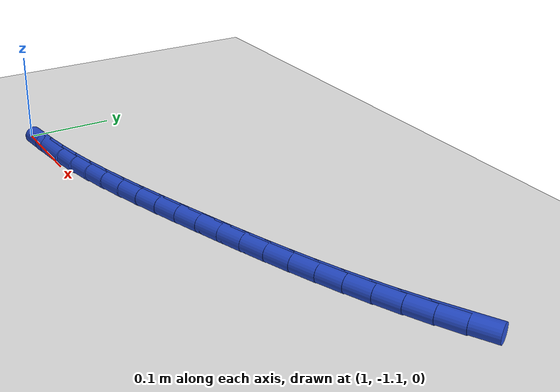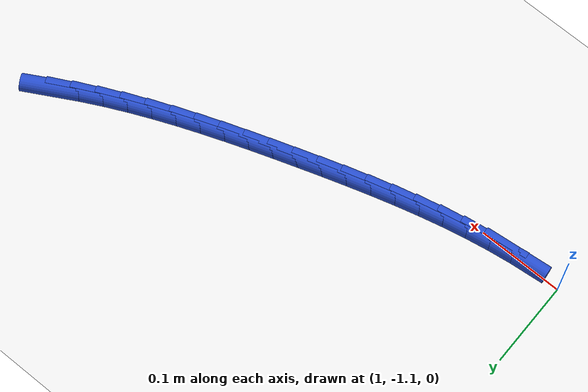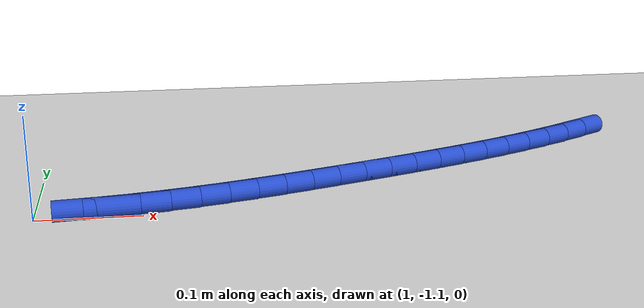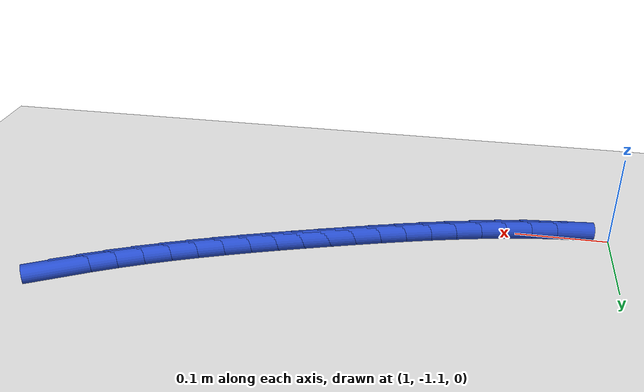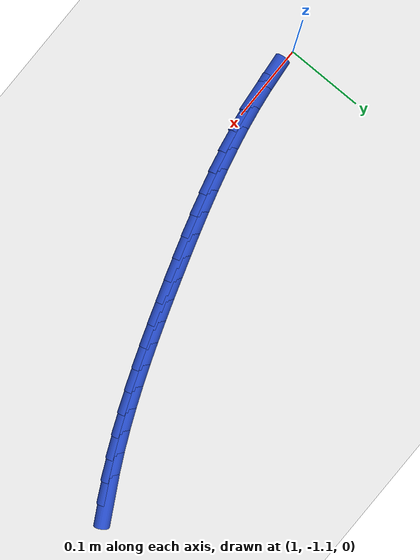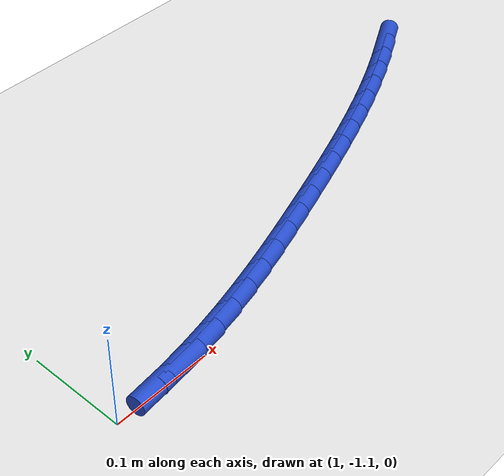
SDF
<sdf version="1.6">
 <world name="default">
  <model name="ground_plane">
   <static>1</static>
   <link name="link">
    <collision name="collision">
     <geometry><plane><normal>0 0 1</normal><size>100 100</size></plane></geometry>
     <surface><friction><ode><mu>100</mu><mu2>50</mu2></ode></friction></surface>
    </collision>
    <visual name="visual">
     <cast_shadows>0</cast_shadows>
     <geometry><plane><normal>0 0 1</normal><size>100 100</size></plane></geometry>
     <material>
      <script><uri>file://media/materials/scripts/gazebo.material</uri><name>Gazebo/WhiteGlow</name></script>
     </material>
    </visual>
   </link>
  </model>
  <model name="line">
   <link name="link_161">
    <pose>1.5607537051192655 -0.9312303788781396 0.01 0 1.57 0.5021988871085666</pose>
    <collision name="collision">
     <geometry><cylinder><radius>0.01</radius><length>0.08</length></cylinder></geometry>
    </collision>
    <visual name="visual">
     <material>
      <script><name>Gazebo/Blue</name><uri>file://media/materials/scripts/gazebo.material</uri></script>
     </material>
     <geometry><cylinder><radius>0.01</radius><length>0.08</length></cylinder></geometry>
    </visual>
   </link>
   <link name="link_162">
    <pose>1.5366263520600705 -0.944480181789634 0.01 0 1.57 0.46912707344735205</pose>
    <collision name="collision">
     <geometry><cylinder><radius>0.01</radius><length>0.08</length></cylinder></geometry>
    </collision>
    <visual name="visual">
     <material>
      <script><name>Gazebo/Blue</name><uri>file://media/materials/scripts/gazebo.material</uri></script>
     </material>
     <geometry><cylinder><radius>0.01</radius><length>0.08</length></cylinder></geometry>
    </visual>
   </link>
   <link name="link_163">
    <pose>1.5119670785547785 -0.95697918376825 0.01 0 1.57 0.43938711156961224</pose>
    <collision name="collision">
     <geometry><cylinder><radius>0.01</radius><length>0.08</length></cylinder></geometry>
    </collision>
    <visual name="visual">
     <material>
      <script><name>Gazebo/Blue</name><uri>file://media/materials/scripts/gazebo.material</uri></script>
     </material>
     <geometry><cylinder><radius>0.01</radius><length>0.08</length></cylinder></geometry>
    </visual>
   </link>
   <link name="link_164">
    <pose>1.4868313854411062 -0.9687937643168526 0.01 0 1.57 0.4129200745432514</pose>
    <collision name="collision">
     <geometry><cylinder><radius>0.01</radius><length>0.08</length></cylinder></geometry>
    </collision>
    <visual name="visual">
     <material>
      <script><name>Gazebo/Blue</name><uri>file://media/materials/scripts/gazebo.material</uri></script>
     </material>
     <geometry><cylinder><radius>0.01</radius><length>0.08</length></cylinder></geometry>
    </visual>
   </link>
   <link name="link_165">
    <pose>1.4612747735570755 -0.9799903029385311 0.01 0 1.57 0.3896533867964054</pose>
    <collision name="collision">
     <geometry><cylinder><radius>0.01</radius><length>0.08</length></cylinder></geometry>
    </collision>
    <visual name="visual">
     <material>
      <script><name>Gazebo/Blue</name><uri>file://media/materials/scripts/gazebo.material</uri></script>
     </material>
     <geometry><cylinder><radius>0.01</radius><length>0.08</length></cylinder></geometry>
    </visual>
   </link>
   <link name="link_166">
    <pose>1.4353527437407103 -0.990635179136376 0.01 0 1.57 0.3695090696083111</pose>
    <collision name="collision">
     <geometry><cylinder><radius>0.01</radius><length>0.08</length></cylinder></geometry>
    </collision>
    <visual name="visual">
     <material>
      <script><name>Gazebo/Blue</name><uri>file://media/materials/scripts/gazebo.material</uri></script>
     </material>
     <geometry><cylinder><radius>0.01</radius><length>0.08</length></cylinder></geometry>
    </visual>
   </link>
   <link name="link_167">
    <pose>1.4091207968300314 -1.0007947724134754 0.01 0 1.57 0.35241037403818326</pose>
    <collision name="collision">
     <geometry><cylinder><radius>0.01</radius><length>0.08</length></cylinder></geometry>
    </collision>
    <visual name="visual">
     <material>
      <script><name>Gazebo/Blue</name><uri>file://media/materials/scripts/gazebo.material</uri></script>
     </material>
     <geometry><cylinder><radius>0.01</radius><length>0.08</length></cylinder></geometry>
    </visual>
   </link>
   <link name="link_168">
    <pose>1.3826344336630623 -1.0105354622729203 0.01 0 1.57 0.33828698374083865</pose>
    <collision name="collision">
     <geometry><cylinder><radius>0.01</radius><length>0.08</length></cylinder></geometry>
    </collision>
    <visual name="visual">
     <material>
      <script><name>Gazebo/Blue</name><uri>file://media/materials/scripts/gazebo.material</uri></script>
     </material>
     <geometry><cylinder><radius>0.01</radius><length>0.08</length></cylinder></geometry>
    </visual>
   </link>
   <link name="link_169">
    <pose>1.355949155077825 -1.0199236282177995 0.01 0 1.57 0.3270790177897286</pose>
    <collision name="collision">
     <geometry><cylinder><radius>0.01</radius><length>0.08</length></cylinder></geometry>
    </collision>
    <visual name="visual">
     <material>
      <script><name>Gazebo/Blue</name><uri>file://media/materials/scripts/gazebo.material</uri></script>
     </material>
     <geometry><cylinder><radius>0.01</radius><length>0.08</length></cylinder></geometry>
    </visual>
   </link>
   <link name="link_170">
    <pose>1.329120461912342 -1.0290256497512034 0.01 0 1.57 0.31874006724229353</pose>
    <collision name="collision">
     <geometry><cylinder><radius>0.01</radius><length>0.08</length></cylinder></geometry>
    </collision>
    <visual name="visual">
     <material>
      <script><name>Gazebo/Blue</name><uri>file://media/materials/scripts/gazebo.material</uri></script>
     </material>
     <geometry><cylinder><radius>0.01</radius><length>0.08</length></cylinder></geometry>
    </visual>
   </link>
   <link name="link_171">
    <pose>1.3022038550046369 -1.03790790637622 0.01 0 1.57 0.31260394363796556</pose>
    <collision name="collision">
     <geometry><cylinder><radius>0.01</radius><length>0.08</length></cylinder></geometry>
    </collision>
    <visual name="visual">
     <material>
      <script><name>Gazebo/Blue</name><uri>file://media/materials/scripts/gazebo.material</uri></script>
     </material>
     <geometry><cylinder><radius>0.01</radius><length>0.08</length></cylinder></geometry>
    </visual>
   </link>
   <link name="link_172">
    <pose>1.2752483718578065 -1.0466199466161619 0.01 0 1.57 0.30445279161996375</pose>
    <collision name="collision">
     <geometry><cylinder><radius>0.01</radius><length>0.08</length></cylinder></geometry>
    </collision>
    <visual name="visual">
     <material>
      <script><name>Gazebo/Blue</name><uri>file://media/materials/scripts/gazebo.material</uri></script>
     </material>
     <geometry><cylinder><radius>0.01</radius><length>0.08</length></cylinder></geometry>
    </visual>
   </link>
   <link name="link_173">
    <pose>1.248260366615908 -1.0551001685184165 0.01 0 1.57 0.2925522202318176</pose>
    <collision name="collision">
     <geometry><cylinder><radius>0.01</radius><length>0.08</length></cylinder></geometry>
    </collision>
    <visual name="visual">
     <material>
      <script><name>Gazebo/Blue</name><uri>file://media/materials/scripts/gazebo.material</uri></script>
     </material>
     <geometry><cylinder><radius>0.01</radius><length>0.08</length></cylinder></geometry>
    </visual>
   </link>
   <link name="link_174">
    <pose>1.2212288856261317 -1.0632418994072164 0.01 0 1.57 0.27685157618334305</pose>
    <collision name="collision">
     <geometry><cylinder><radius>0.01</radius><length>0.08</length></cylinder></geometry>
    </collision>
    <visual name="visual">
     <material>
      <script><name>Gazebo/Blue</name><uri>file://media/materials/scripts/gazebo.material</uri></script>
     </material>
     <geometry><cylinder><radius>0.01</radius><length>0.08</length></cylinder></geometry>
    </visual>
   </link>
   <link name="link_175">
    <pose>1.1941429258510683 -1.0709383380058104 0.01 0 1.57 0.25729715149899535</pose>
    <collision name="collision">
     <geometry><cylinder><radius>0.01</radius><length>0.08</length></cylinder></geometry>
    </collision>
    <visual name="visual">
     <material>
      <script><name>Gazebo/Blue</name><uri>file://media/materials/scripts/gazebo.material</uri></script>
     </material>
     <geometry><cylinder><radius>0.01</radius><length>0.08</length></cylinder></geometry>
    </visual>
   </link>
   <link name="link_176">
    <pose>1.166991484253307 -1.0780826830374468 0.01 0 1.57 0.23383391309882798</pose>
    <collision name="collision">
     <geometry><cylinder><radius>0.01</radius><length>0.08</length></cylinder></geometry>
    </collision>
    <visual name="visual">
     <material>
      <script><name>Gazebo/Blue</name><uri>file://media/materials/scripts/gazebo.material</uri></script>
     </material>
     <geometry><cylinder><radius>0.01</radius><length>0.08</length></cylinder></geometry>
    </visual>
   </link>
   <link name="link_177">
    <pose>1.139763557795436 -1.0845681332253732 0.01 0 1.57 0.20641418117179325</pose>
    <collision name="collision">
     <geometry><cylinder><radius>0.01</radius><length>0.08</length></cylinder></geometry>
    </collision>
    <visual name="visual">
     <material>
      <script><name>Gazebo/Blue</name><uri>file://media/materials/scripts/gazebo.material</uri></script>
     </material>
     <geometry><cylinder><radius>0.01</radius><length>0.08</length></cylinder></geometry>
    </visual>
   </link>
   <link name="link_178">
    <pose>1.1124481434400473 -1.090287887292838 0.01 0 1.57 0.1750085595229411</pose>
    <collision name="collision">
     <geometry><cylinder><radius>0.01</radius><length>0.08</length></cylinder></geometry>
    </collision>
    <visual name="visual">
     <material>
      <script><name>Gazebo/Blue</name><uri>file://media/materials/scripts/gazebo.material</uri></script>
     </material>
     <geometry><cylinder><radius>0.01</radius><length>0.08</length></cylinder></geometry>
    </visual>
   </link>
   <link name="link_179">
    <pose>1.0850342381497293 -1.09513514396309 0.01 0 1.57 0.13961908929927147</pose>
    <collision name="collision">
     <geometry><cylinder><radius>0.01</radius><length>0.08</length></cylinder></geometry>
    </collision>
    <visual name="visual">
     <material>
      <script><name>Gazebo/Blue</name><uri>file://media/materials/scripts/gazebo.material</uri></script>
     </material>
     <geometry><cylinder><radius>0.01</radius><length>0.08</length></cylinder></geometry>
    </visual>
   </link>
   <link name="link_180">
    <pose>1.0575108388870718 -1.0990031019593773 0.01 0 1.57 0.10029544375802366</pose>
    <collision name="collision">
     <geometry><cylinder><radius>0.01</radius><length>0.08</length></cylinder></geometry>
    </collision>
    <visual name="visual">
     <material>
      <script><name>Gazebo/Blue</name><uri>file://media/materials/scripts/gazebo.material</uri></script>
     </material>
     <geometry><cylinder><radius>0.01</radius><length>0.08</length></cylinder></geometry>
    </visual>
   </link>
  </model>
 </world>
</sdf>
